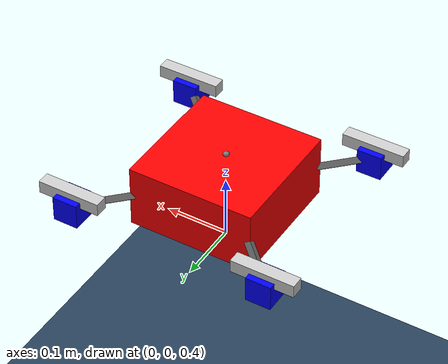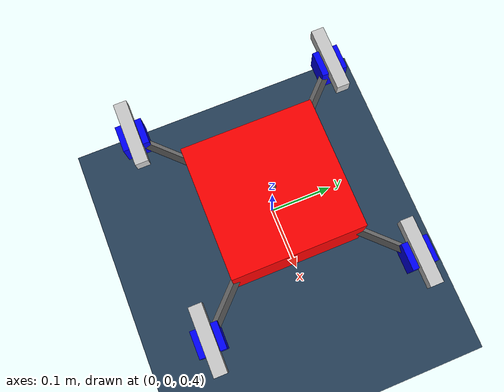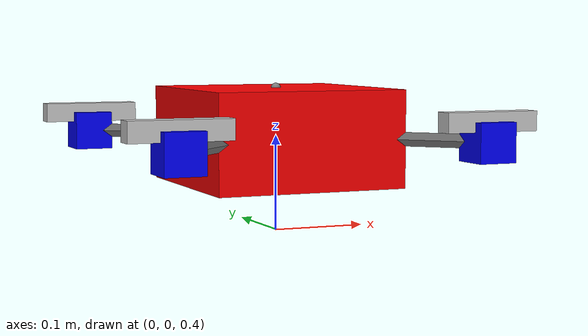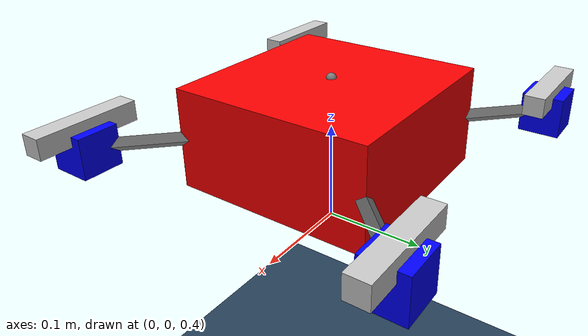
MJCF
<mujoco model="quad scene">
  <!-- 引入基础飞行器模型（几何、关节、执行器定义在 quad.xml） -->
  <include file="quad.xml"/>

  <!-- 统计设置影响可视化缩放、重心等调试参数 -->
  <statistic center="0 0 0.1" extent="0.2" meansize=".05"/>

  <visual>
    <!-- 设置全局光照和背景雾效，加强场景可视化效果 -->
    <headlight diffuse="0.6 0.6 0.6" ambient="0.3 0.3 0.3" specular="0 0 0"/>
    <rgba haze="0.15 0.25 0.35 1"/>
    <global azimuth="-20" elevation="-20" ellipsoidinertia="true"/>
  </visual>

  <asset>
    <!-- 天空盒与地面纹理，提供背景与棋盘地面材质 -->
    <texture type="skybox" builtin="gradient" rgb1="0.3 0.5 0.7" rgb2="0 0 0" width="512" height="3072"/>
    <texture type="2d" name="groundplane" builtin="checker" mark="edge" rgb1="0.2 0.3 0.4" rgb2="0.1 0.2 0.3"
      markrgb="0.8 0.8 0.8" width="300" height="300"/>
    <material name="groundplane" texture="groundplane" texuniform="true" texrepeat="5 5" reflectance="0.2"/>
  </asset>

  <worldbody>
    <!-- 俯视相机便于观察飞行器运动 -->
    <camera name="world_camera" pos="0.560 -0.687 0.744" xyaxes="0.872 0.489 -0.000 -0.260 0.465 0.846"/>
    <!-- 主光源，自上而下照亮场景 -->
    <light pos="0 0 1.5" dir="0 0 -1" directional="true"/>
    <!-- 场景中唯一的地面平面，与 quad.xml 中的模型没有重叠 -->
    <geom name="floor" size="0 0 0.05" type="plane" material="groundplane"/>
  </worldbody>
</mujoco>

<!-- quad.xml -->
<mujoco model="444">
<!-- 全局飞行器模型定义，供不同场景重用 -->
<option integrator="implicit" timestep="0.005" viscosity="0.001" gravity="0 0 -9.81"/>

  <default>
    <!-- 预留的默认类，可在此集中设置材料或关节参数 -->
    <default class="444">
    </default>
  </default>

<worldbody>
  <!-- 主体刚体定义：包含机体和四个机臂 -->
  <body name="444" pos="0 0 0.5" childclass="444">
  <inertial pos="0 0 0" mass="2.458" diaginertia="0.01860 0.01860 0.03215"/>
    <freejoint/>
    <geom name="base" type="box" size="0.1 0.1 0.05" rgba="1 0 0 1"/>

    <!-- X+ Y+ : 前左电机 -->
    <body name="arm_fl">
      <geom type="box" fromto="0 0 0 0.159 0.159 0" size="0.005" rgba="0.4 0.4 0.4 1"/>
      <body name="motor_fl" pos="0.159 0.159 0">
        <geom type="box" size="0.02 0.02 0.02" rgba="0 0 1 1"/>
        <body name="prop_fl">
          <joint name="rotor_fl" type="hinge" axis="0 0 -1" damping="0.2"/>
          <geom type="box" size="0.05 0.01 0.01" pos="0 0 0.02" rgba="0.8 0.8 0.8 1" contype="0" conaffinity="0"/>
        </body>
      </body>
    </body>

    <!-- X+ Y- : 前右电机 -->
    <body name="arm_fr">
      <geom type="box" fromto="0 0 0 0.159 -0.159 0" size="0.005" rgba="0.4 0.4 0.4 1"/>
      <body name="motor_fr" pos="0.159 -0.159 0">
        <geom type="box" size="0.02 0.02 0.02" rgba="0 0 1 1"/>
        <body name="prop_fr">
          <joint name="rotor_fr" type="hinge" axis="0 0 1" damping="0.2"/>
          <geom type="box" size="0.05 0.01 0.01" pos="0 0 0.02" rgba="0.8 0.8 0.8 1" contype="0" conaffinity="0"/>
        </body>
      </body>
    </body>

    <!-- X- Y+ : 后左电机 -->
    <body name="arm_bl">
      <geom type="box" fromto="0 0 0 -0.159 0.159 0" size="0.005" rgba="0.4 0.4 0.4 1"/>
      <body name="motor_bl" pos="-0.159 0.159 0">
        <geom type="box" size="0.02 0.02 0.02" rgba="0 0 1 1"/>
        <body name="prop_bl">
          <joint name="rotor_bl" type="hinge" axis="0 0 1" damping="0.2"/>
          <geom type="box" size="0.05 0.01 0.01" pos="0 0 0.02" rgba="0.8 0.8 0.8 1" contype="0" conaffinity="0"/>
        </body>
      </body>
    </body>

    <!-- X- Y- : 后右电机 -->
    <body name="arm_br">
      <geom type="box" fromto="0 0 0 -0.159 -0.159 0" size="0.005" rgba="0.4 0.4 0.4 1"/>
      <body name="motor_br" pos="-0.159 -0.159 0">
        <geom type="box" size="0.02 0.02 0.02" rgba="0 0 1 1"/>
        <body name="prop_br">
          <joint name="rotor_br" type="hinge" axis="0 0 -1" damping="0.2"/>
          <geom type="box" size="0.05 0.01 0.01" pos="0 0 0.02" rgba="0.8 0.8 0.8 1" contype="0" conaffinity="0"/>
        </body>
      </body>
    </body>
  <!-- 传感器与推力作用点，用于传感器输出和摩擦力矩计算 -->
  <site name="imu" pos="0 0 0.05"/>
  <site name="motor1_site" pos="0.159 0.159 0.013"/>
  <site name="motor2_site" pos="0.159 -0.159 0.013"/>
  <site name="motor3_site" pos="-0.159 0.159 0.013"/>
  <site name="motor4_site" pos="-0.159 -0.159 0.013"/>
  </body>

</worldbody>

<actuator>
  <!-- rotor_* 传感器型执行器：可读取估计的电机角速度 -->
  <velocity name="fr_motor" joint="rotor_fr" kv="1" gear="0.001" ctrlrange="0 1434.7 "/>
  <velocity name="fl_motor" joint="rotor_fl" kv="1" gear="0.001" ctrlrange="0 1434.7 "/>
  <velocity name="bl_motor" joint="rotor_bl" kv="1" gear="0.001" ctrlrange="0 1434.7 "/>
  <velocity name="br_motor" joint="rotor_br" kv="1" gear="0.001" ctrlrange="0 1434.7 "/>

  <!-- motor* 主推力执行器：输入 0~1，经 gear 转为推力和反扭矩 -->
  <motor class="444" ctrlrange="0 1" gear="0 0 12.5 0 0 -0.2175" site="motor1_site" name="motor1"/>
  <motor class="444" ctrlrange="0 1" gear="0 0 12.5 0 0 0.2175" site="motor2_site" name="motor2"/>
  <motor class="444" ctrlrange="0 1" gear="0 0 12.5 0 0 0.2175" site="motor3_site" name="motor3"/>
  <motor class="444" ctrlrange="0 1" gear="0 0 12.5 0 0 -0.2175" site="motor4_site" name="motor4"/>
</actuator>

<sensor>
  <!-- IMU 传感器：角速度、线加速度与姿态四元数 -->
  <gyro name="imu_gyro" site="imu"/>
  <accelerometer name="body_linacc" site="imu"/>
  <framequat name="body_quat" objtype="site" objname="imu"/>
</sensor>

<keyframe>
  <!-- 供调试用的悬停关键帧，可在仿真初始化时加载 -->
  <key name="hover"
       qpos="0 0 0.1 1 0 0 0 0 0 0 0"
       ctrl="0 0 0 0  0 0 0 0"/>
</keyframe>
</mujoco>
